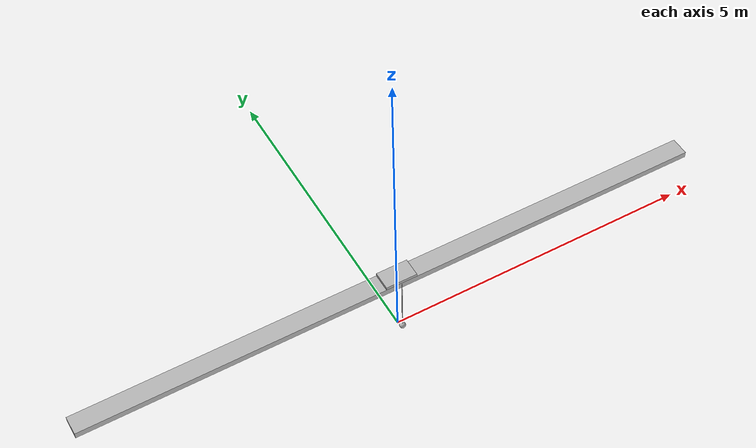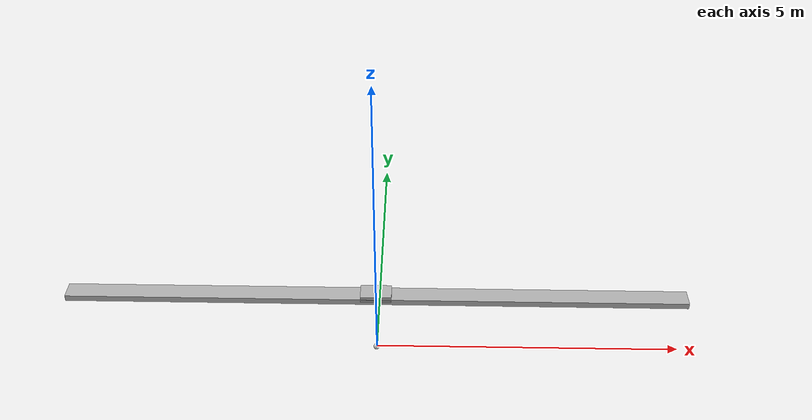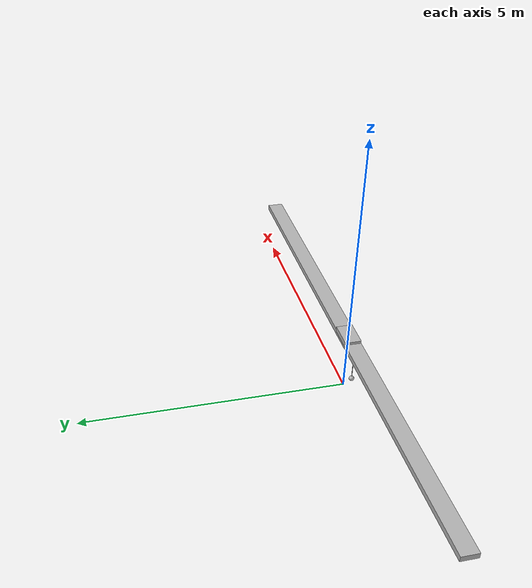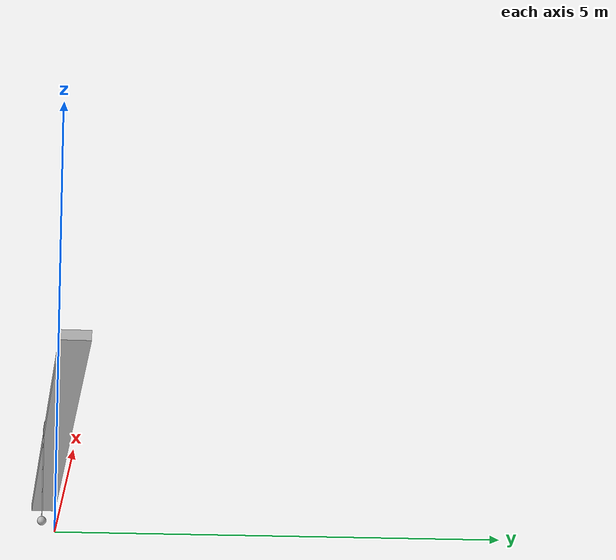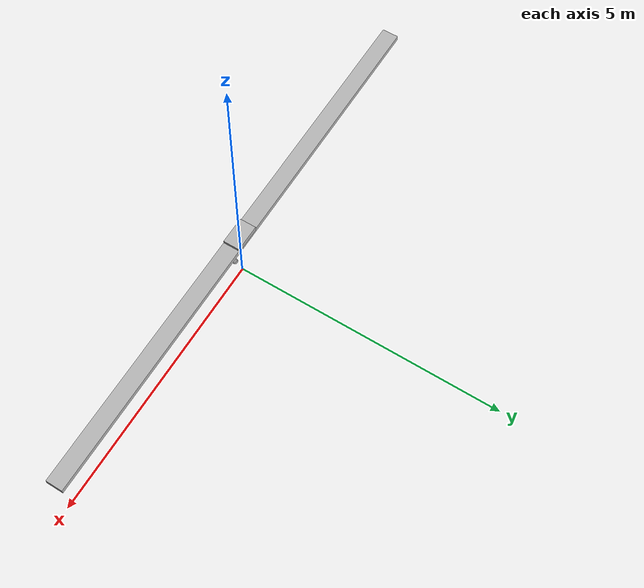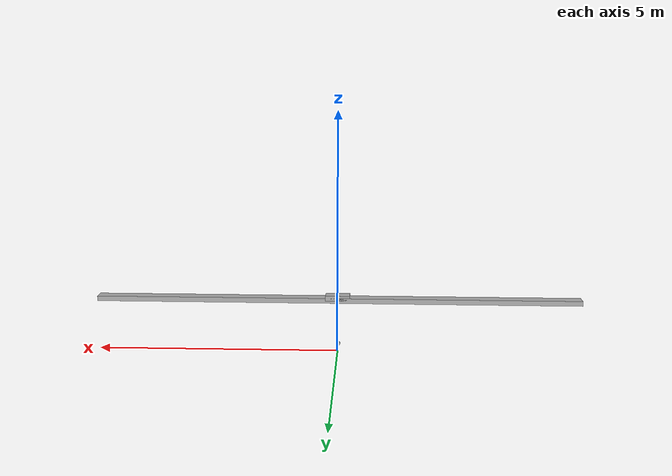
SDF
<?xml version="1.0"?>

<sdf version='1.7'>
    <model name="pendulum">
        <pose>0 0 0 0 0 0</pose>
        <static>false</static>

        <link name="rail">
            <pose>0 0 0.05 0 0 0</pose>

            <!--We use some large inertial values to prevent the base from moving-->
            <inertial>
                <pose>0 0 0 0 0 0</pose>
                <mass>10000</mass>
                <inertia>
                <ixx>10000</ixx>
                <ixy>0</ixy>
                <ixz>0</ixz>
                <iyy>10000</iyy>
                <iyz>0.0</iyz>
                <izz>10000</izz>
                </inertia>
            </inertial>

            <visual name="rail_visual">
                <pose>0 0 1.05 0 0 0</pose>
                <geometry>
                    <box>
                        <size>10.0 0.3 0.1</size>
                    </box>
                </geometry>
            </visual>
            <collision name="rail_collision">
                <pose>0 0 0.0 0 0 0</pose>
                <geometry>
                    <box>
                        <size>10.0 0.3 0.1</size>
                    </box>
                </geometry>
            </collision>
        </link>

        <link name="cart">
            <pose>0 0 1.15 0 0 0</pose>
            <inertial>
                <pose>0 0 0 0 0 0</pose>
                <mass>1.0</mass>
                <inertia>
                    <ixx>0.1</ixx>
                    <ixy>0</ixy>
                    <ixz>0</ixz>
                    <iyy>0.1</iyy>
                    <iyz>0.0</iyz>
                    <izz>0.1</izz>
                </inertia>
            </inertial>
            <visual name="cart_visual">
                <pose>0 0 0 0 0 0</pose>
                <geometry>
                    <box>
                        <size>0.5 0.3 0.1</size>
                    </box>
                </geometry>
            </visual>
            <collision name="cart_collision">
                <pose>0 0 0 0 0 0</pose>
                <geometry>
                    <box>
                        <size>0.5 0.3 0.1</size>
                    </box>
                </geometry>
            </collision>
        </link>

        <joint name="rail_to_cart_joint" type="prismatic">
            <pose>0 0 0 0 0 0</pose>

            <parent>rail</parent>
            <child>cart</child>

            <axis>
                <xyz>1 0 0</xyz>
                <limit>
                    <lower>-1000</lower>
                    <upper>1000</upper>
                    <effort>100</effort>
                    <velocity>100</velocity>
                </limit>
            </axis>
        </joint>

        <link name="pendulum">
            <pose>0 -0.15 1.125 0 0 0</pose>
            <inertial>
                <pose>0 0 -1 0 0 0</pose>
                <mass>1</mass>
                <inertia>
                <ixx>1</ixx>
                <ixy>0</ixy>
                <ixz>0</ixz>
                <iyy>1</iyy>
                <iyz>0.0</iyz>
                <izz>1</izz>
                </inertia>
            </inertial>

            <visual name="pendulum_visual">
                <pose>0 0 -0.5 0 0 0</pose>
                <geometry>
                    <box>
                        <size>0.01 0.01 1.0</size>
                    </box>
                </geometry>
            </visual>
            <visual name="pendulum_ball_visual">
                <pose>0 0 -1.0 0 0 0</pose>
                <geometry>
                    <sphere>
                        <radius>0.05</radius>
                    </sphere>
                </geometry>
            </visual>
        </link>

        <joint name="cart_to_pendulum_joint" type="revolute">
            <pose>0 0 0 0 0 0</pose>
            <parent>cart</parent>
            <child>pendulum</child>
            <axis>
                <xyz>0 1 0</xyz>
                <lower>-6.14</lower>
                <upper>6.14</upper>
            </axis>
        </joint>
    </model>
</sdf>
